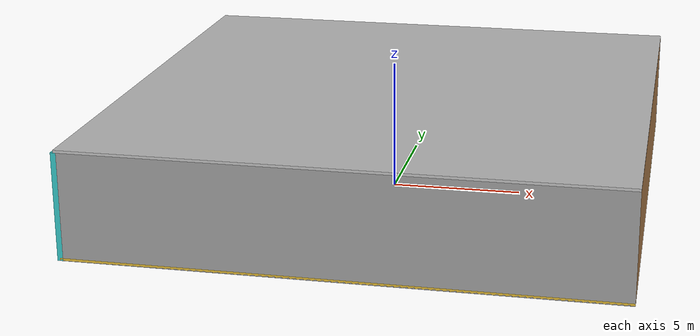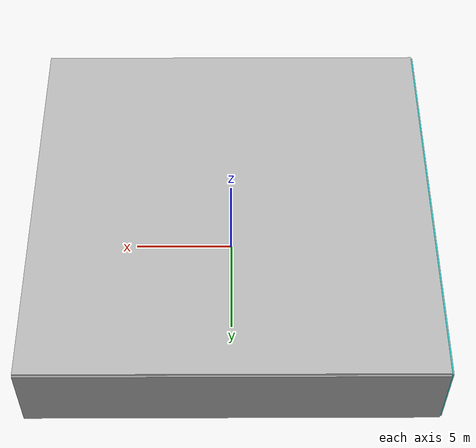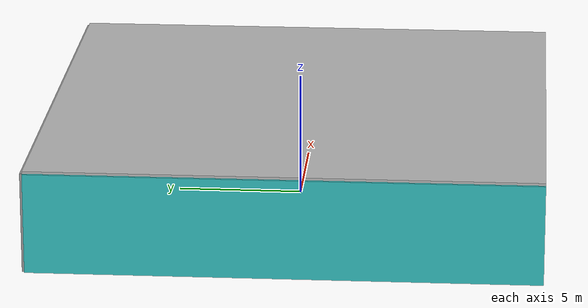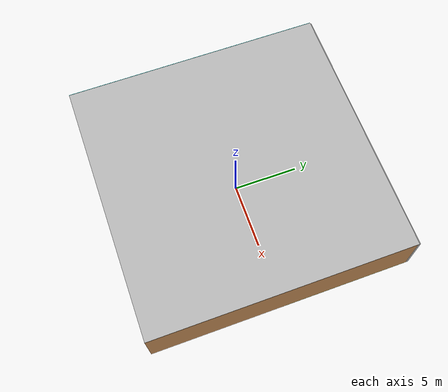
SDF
<sdf version="1.4">
 <world name="default">
  <physics type="ode">
   <max_step_size>0.001</max_step_size>
   <real_time_factor>1</real_time_factor>
   <real_time_update_rate>1000</real_time_update_rate>
   <gravity>0 0 -9.8</gravity>
  </physics>
  <scene><ambient>0.4 0.4 0.4 1</ambient><background>0.7 0.7 0.7 1</background><shadows>1</shadows></scene>
  <model name="Surrounding">
   <static>1</static>
   <link name="Ceiling">
    <collision name="Ceiling_Collision"><geometry><box><size>20 20 0.1</size></box></geometry></collision>
    <visual name="Ceiling_Visual">
     <geometry><box><size>20 20 0.1</size></box></geometry>
     <material>
      <script><uri>file://media/materials/scripts/gazebo.material</uri><name>Gazebo/CloudySky</name></script>
     </material>
    </visual>
    <pose>0 0 4.05 0 0 0</pose>
   </link>
   <link name="Wall_South">
    <collision name="Wall_South_Collision">
     <geometry><box><size>20 0 4</size></box></geometry>
     <pose>0 0 2 0 -0 0</pose>
    </collision>
    <visual name="Wall_South_Visual">
     <pose>0 0 2 0 -0 0</pose>
     <geometry><box><size>20 0 4</size></box></geometry>
     <material>
      <script><uri>file://media/materials/scripts/gazebo.material</uri><name>Gazebo/GreyGradientSky</name></script>
     </material>
    </visual>
    <velocity_decay><linear>0</linear><angular>0</angular></velocity_decay>
    <pose>0 -10 0 0 -0 0</pose>
   </link>
   <link name="Wall_East">
    <collision name="Wall_21_Collision">
     <geometry><box><size>20 0 4</size></box></geometry>
     <pose>0 0 2 0 -0 0</pose>
    </collision>
    <visual name="Wall_21_Visual">
     <pose>0 0 2 0 -0 0</pose>
     <geometry><box><size>20 0 4</size></box></geometry>
     <material>
      <script><uri>file://media/materials/scripts/gazebo.material</uri><name>Gazebo/WoodFloor</name></script>
     </material>
    </visual>
    <velocity_decay><linear>0</linear><angular>0</angular></velocity_decay>
    <pose>10 0 0 0 -0 1.5708</pose>
   </link>
   <link name="Wall_North">
    <collision name="Wall_22_Collision">
     <geometry><box><size>20 0.2 4</size></box></geometry>
     <pose>0 0 2 0 -0 0</pose>
    </collision>
    <visual name="Wall_22_Visual">
     <pose>0 0 2 0 -0 0</pose>
     <geometry><box><size>20 0.2 4</size></box></geometry>
     <material>
      <script><uri>file://media/materials/scripts/gazebo.material</uri><name>Gazebo/GreyGradientSky</name></script>
     </material>
    </visual>
    <velocity_decay><linear>0</linear><angular>0</angular></velocity_decay>
    <pose>0 10 0 0 -0 0</pose>
   </link>
   <link name="Wall_West">
    <collision name="Wall_23_Collision">
     <geometry><box><size>20 0.2 4</size></box></geometry>
     <pose>0 0 2 0 -0 0</pose>
    </collision>
    <visual name="Wall_23_Visual">
     <pose>0 0 2 0 -0 0</pose>
     <geometry><box><size>20 0.2 4</size></box></geometry>
     <material>
      <script>
       <uri>file://media/materials/scripts/gazebo.material</uri>
       <name>Gazebo/TurquoiseGlowOutline</name>
      </script>
     </material>
    </visual>
    <velocity_decay><linear>0</linear><angular>0</angular></velocity_decay>
    <pose>-10 0 0 0 0 -1.5708</pose>
   </link>
   <link name="Ground_link">
    <collision name="collision">
     <pose>0 0 .05 0 -0 0</pose>
     <geometry><box><size>20 20 0.1</size></box></geometry>
    </collision>
    <visual name="visual">
     <pose>0 0 .05 0 -0 0</pose>
     <geometry><box><size>20 20 0.1</size></box></geometry>
     <material>
      <script><uri>file://media/materials/scripts/gazebo.material</uri><name>Gazebo/Gold</name></script>
     </material>
    </visual>
   </link>
   <static>1</static>
  </model>
  <spherical_coordinates>
   <surface_model>EARTH_WGS84</surface_model>
   <latitude_deg>0</latitude_deg>
   <longitude_deg>0</longitude_deg>
   <elevation>0</elevation>
   <heading_deg>0</heading_deg>
  </spherical_coordinates>
  <light name="lightball_0" type="diffuse">
   <diffuse>0.8 0.8 0.8 1</diffuse>
   <specular>0.2 0.2 0.2 1</specular>
   <attenuation>
    <range>100</range>
    <constant>0.7</constant>
    <linear>0.01</linear>
    <quadratic>0.001</quadratic>
   </attenuation>
   <direction>-0.5 0.1 -0.9</direction>
   <pose>3.19834394513 -3.61786905932 3.51422481082 0 0 0</pose>
  </light>
  <light name="lightball_1" type="diffuse">
   <diffuse>0.8 0.8 0.8 1</diffuse>
   <specular>0.2 0.2 0.2 1</specular>
   <attenuation>
    <range>100</range>
    <constant>0.7</constant>
    <linear>0.01</linear>
    <quadratic>0.001</quadratic>
   </attenuation>
   <direction>-0.5 0.1 -0.9</direction>
   <pose>2.94231961275 0.797518654675 3.55869690937 0 0 0</pose>
  </light>
  <light name="lightball_2" type="diffuse">
   <diffuse>0.8 0.8 0.8 1</diffuse>
   <specular>0.2 0.2 0.2 1</specular>
   <attenuation>
    <range>100</range>
    <constant>0.7</constant>
    <linear>0.01</linear>
    <quadratic>0.001</quadratic>
   </attenuation>
   <direction>-0.5 0.1 -0.9</direction>
   <pose>2.56503604196 -4.37304815563 3.8412349453 0 0 0</pose>
  </light>
  <light name="lightball_3" type="diffuse">
   <diffuse>0.8 0.8 0.8 1</diffuse>
   <specular>0.2 0.2 0.2 1</specular>
   <attenuation>
    <range>100</range>
    <constant>0.7</constant>
    <linear>0.01</linear>
    <quadratic>0.001</quadratic>
   </attenuation>
   <direction>-0.5 0.1 -0.9</direction>
   <pose>3.49878341576 6.04151776235 1.73246861389 0 0 0</pose>
  </light>
  <light name="lightball_4" type="diffuse">
   <diffuse>0.8 0.8 0.8 1</diffuse>
   <specular>0.2 0.2 0.2 1</specular>
   <attenuation>
    <range>100</range>
    <constant>0.7</constant>
    <linear>0.01</linear>
    <quadratic>0.001</quadratic>
   </attenuation>
   <direction>-0.5 0.1 -0.9</direction>
   <pose>-3.18435982836 -6.29072810216 3.21101954598 0 0 0</pose>
  </light>
  <light name="lightball_5" type="diffuse">
   <diffuse>0.8 0.8 0.8 1</diffuse>
   <specular>0.2 0.2 0.2 1</specular>
   <attenuation>
    <range>100</range>
    <constant>0.7</constant>
    <linear>0.01</linear>
    <quadratic>0.001</quadratic>
   </attenuation>
   <direction>-0.5 0.1 -0.9</direction>
   <pose>9.145336215 -6.80184830425 1.70131627354 0 0 0</pose>
  </light>
  <light name="lightball_6" type="diffuse">
   <diffuse>0.8 0.8 0.8 1</diffuse>
   <specular>0.2 0.2 0.2 1</specular>
   <attenuation>
    <range>100</range>
    <constant>0.7</constant>
    <linear>0.01</linear>
    <quadratic>0.001</quadratic>
   </attenuation>
   <direction>-0.5 0.1 -0.9</direction>
   <pose>6.27238927664 -2.49931222304 3.31402195751 0 0 0</pose>
  </light>
  <light name="lightball_7" type="diffuse">
   <diffuse>0.8 0.8 0.8 1</diffuse>
   <specular>0.2 0.2 0.2 1</specular>
   <attenuation>
    <range>100</range>
    <constant>0.7</constant>
    <linear>0.01</linear>
    <quadratic>0.001</quadratic>
   </attenuation>
   <direction>-0.5 0.1 -0.9</direction>
   <pose>2.4503883675 -4.13492689191 1.39889680259 0 0 0</pose>
  </light>
  <include>
   <uri>model://construction_cone</uri>
   <pose>-4.35638858937 5.21873183241 0 0 0 2.04850329767</pose>
  </include>
  <include>
   <uri>model://construction_cone</uri>
   <pose>-0.942378692743 8.11259890594 0 0 0 1.98772130639</pose>
  </include>
  <include><uri>model://cabinet</uri><pose>1.65955393064 -7.18410829907 0 0 0 0.184179248955</pose></include>
  <include><uri>model://cabinet</uri><pose>1.23060363195 -1.54198283711 0 0 0 3.05096121245</pose></include>
  <include>
   <uri>model://construction_cone</uri>
   <pose>7.85104296889 -4.41782087987 0 0 0 2.81529655081</pose>
  </include>
 </world>
</sdf>

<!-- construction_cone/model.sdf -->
<sdf version="1.5">
  <model name="Construction Cone">
    <link name="link">
      <collision name="collision">
        <geometry>
          <mesh>
            <scale>10 10 10</scale>
            <uri>file://isr-testbed/construction_cone/meshes/construction_cone.dae</uri>
          </mesh>
        </geometry>
      </collision>
      <visual name="visual">
        <geometry>
          <mesh>
            <scale>10 10 10</scale>
            <uri>file://isr-testbed/construction_cone/meshes/construction_cone.dae</uri>
          </mesh>
        </geometry>
      </visual>
    </link>
  </model>
</sdf>

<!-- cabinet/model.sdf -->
<sdf version="1.5">
  <model name="cabinet">
    <static>true</static>
    <link name="cabinet_bottom_plate">
      <inertial>
        <pose>0 0 -1 0 0 0</pose>
        <inertia>
          <ixx>2.050000</ixx>
          <ixy>0</ixy>
          <ixz>0</ixz>
          <iyy>2.050000</iyy>
          <iyz>0</iyz>
          <izz>2.050000</izz>
        </inertia>
        <mass>25.000000</mass>
      </inertial>
      <collision name="cabinet_bottom_plate_geom">
        <pose>0 0 0.010000 0 0 0</pose>
        <geometry>
          <box>
            <size>0.450000 0.450000 0.020000</size>
          </box>
        </geometry>
      </collision>
      <visual name="cabinet_bottom_plate_geom_visual">
        <pose>0 0 0.010000 0 0 0</pose>
        <geometry>
          <box>
            <size>0.450000 0.450000 0.020000</size>
          </box>
        </geometry>
        <material>
          <script>
            <uri>model://media/materials/scripts/gazebo.material</uri>
            <name>Gazebo/Wood</name>
          </script>
        </material>
      </visual>
      <collision name="cabinet_bottom_plate_geom_cabinet_back_plate">
        <pose>0.235000 0 0.510000 0 0 0</pose>
        <geometry>
          <box>
            <size>0.020000 0.450000 1.020000</size>
          </box>
        </geometry>
      </collision>
      <visual name="cabinet_bottom_plate_geom_cabinet_back_plate_visual">
        <pose>0.235000 0 0.510000 0 0 0</pose>
        <geometry>
          <box>
            <size>0.020000 0.450000 1.020000</size>
          </box>
        </geometry>
        <material>
          <script>
            <uri>model://media/materials/scripts/gazebo.material</uri>
            <name>Gazebo/Wood</name>
          </script>
        </material>
      </visual>
      <collision name="cabinet_bottom_plate_geom_cabinet_left_plate">
        <pose>0 0.235000 0.510000 0 0 0</pose>
        <geometry>
          <box>
            <size>0.450000 0.020000 1.020000</size>
          </box>
        </geometry>
      </collision>
      <visual name="cabinet_bottom_plate_geom_cabinet_left_plate_visual">
        <pose>0 0.235000 0.510000 0 0 0</pose>
        <geometry>
          <box>
            <size>0.450000 0.020000 1.020000</size>
          </box>
        </geometry>
        <material>
          <script>
            <uri>model://media/materials/scripts/gazebo.material</uri>
            <name>Gazebo/Wood</name>
          </script>
        </material>
      </visual>
      <collision name="cabinet_bottom_plate_geom_cabinet_middle_plate">
        <pose>0 0 0.510000 0 0 0</pose>
        <geometry>
          <box>
            <size>0.450000 0.450000 0.020000</size>
          </box>
        </geometry>
      </collision>
      <visual name="cabinet_bottom_plate_geom_cabinet_middle_plate_visual">
        <pose>0 0 0.510000 0 0 0</pose>
        <geometry>
          <box>
            <size>0.450000 0.450000 0.020000</size>
          </box>
        </geometry>
        <material>
          <script>
            <uri>model://media/materials/scripts/gazebo.material</uri>
            <name>Gazebo/Wood</name>
          </script>
        </material>
      </visual>
      <collision name="cabinet_bottom_plate_geom_cabinet_right_plate">
        <pose>0 -0.235000 0.510000 0 0 0</pose>
        <geometry>
          <box>
            <size>0.450000 0.020000 1.020000</size>
          </box>
        </geometry>
      </collision>
      <visual name="cabinet_bottom_plate_geom_cabinet_right_plate_visual">
        <pose>0 -0.235000 0.510000 0 0 0</pose>
        <geometry>
          <box>
            <size>0.450000 0.020000 1.020000</size>
          </box>
        </geometry>
        <material>
          <script>
            <uri>model://media/materials/scripts/gazebo.material</uri>
            <name>Gazebo/Wood</name>
          </script>
        </material>
      </visual>
      <collision name="cabinet_bottom_plate_geom_cabinet_top_plate">
        <pose>0 0 1.010000 0 0 0</pose>
        <geometry>
          <box>
            <size>0.450000 0.450000 0.020000</size>
          </box>
        </geometry>
      </collision>
      <visual name="cabinet_bottom_plate_geom_cabinet_top_plate_visual">
        <pose>0 0 1.010000 0 0 0</pose>
        <geometry>
          <box>
            <size>0.450000 0.450000 0.020000</size>
          </box>
        </geometry>
        <material>
          <script>
            <uri>model://media/materials/scripts/gazebo.material</uri>
            <name>Gazebo/Wood</name>
          </script>
        </material>
      </visual>
    </link>
  </model>
</sdf>
